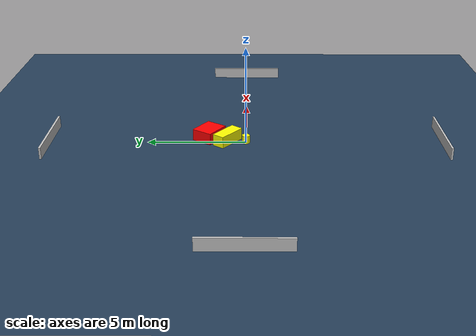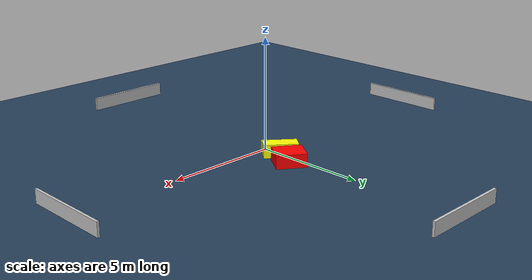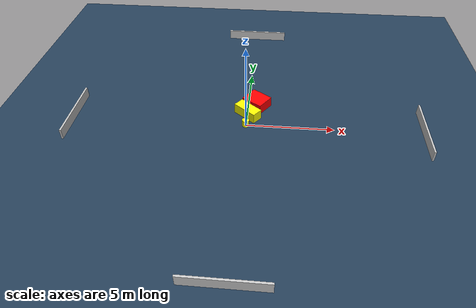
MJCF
<?xml version="1.0" ?>
<mujoco model="generated_environment">
  <option timestep="0.01" integrator="RK4" cone="elliptic"/>
  <default>
    <geom density="1"/>
  </default>
  <asset>
    <texture builtin="gradient" height="3072" name="skybox" rgb1="0.3 0.5 0.7" rgb2="0 0 0" type="skybox" width="512"/>
    <texture builtin="checker" height="300" name="groundplane" rgb1="0.2 0.3 0.4" rgb2="0.1 0.2 0.3" type="2d" width="300"/>
    <material name="groundplane" reflectance="0.2" texrepeat="5 5" texture="groundplane"/>
  </asset>
  <worldbody>
    <light dir="0 0 -1" directional="true" pos="0 0 1.5"/>
    <geom condim="3" friction="0.5 0.005 0.001" material="groundplane" name="floor" pos="0 0 0" size="0 0 0.05" type="plane"/>
    <body name="walls">
      <geom name="wall_1" condim="4" pos="-10.0 0.0 0.3" rgba="0.800000011920929 0.800000011920929 0.800000011920929 1.0" size="0.05 2.0 0.3" type="box"/>
      <geom name="wall_2" condim="4" pos="10.0 0.0 0.3" rgba="0.800000011920929 0.800000011920929 0.800000011920929 1.0" size="0.05 2.0 0.3" type="box"/>
      <geom name="wall_3" condim="4" pos="0.0 -10.0 0.3" rgba="0.800000011920929 0.800000011920929 0.800000011920929 1.0" size="2.0 0.05 0.3" type="box"/>
      <geom name="wall_4" condim="4" pos="0.0 10.0 0.3" rgba="0.800000011920929 0.800000011920929 0.800000011920929 1.0" size="2.0 0.05 0.3" type="box"/>
    </body>
    <body name="robot">
      <joint name="joint_x" type="slide" pos="0 0 0" axis="1 0 0"/>
      <joint name="joint_y" type="slide" pos="0 0 0" axis="0 1 0"/>
      <geom name="robot" type="cylinder" pos="0.0 0.0 0.2" size="0.2 0.2 0.0" mass="5.0" friction="1.0 0.005 0.0001" condim="4" rgba="1.0 1.0 0.0 1.0"/>
    </body>
    <body name="obstacle_1_movable">
      <geom name="obstacle_1_movable" condim="4" pos="0.04835600420463263 0.9424055109831273 0.3" euler="0 0 51.69494805473664" friction="0.0 0.005 0.001" rgba="1.0 1.0 0.0 1.0" size="0.3254108131762835 0.7573651702125057 0.3" type="box" mass="0.1"/>
      <joint type="free"/>
    </body>
    <body name="obstacle_2_static">
      <geom name="obstacle_2_static" condim="4" pos="0.5113888966050423 1.8946233376910488 0.3" euler="0 0 325.4971041220733" friction="0.0 0.005 0.001" rgba="1.0 0.0 0.0 1.0" size="0.6566570393919194 0.5528102953099715 0.3" type="box"/>
    </body>
  </worldbody>
  <actuator>
    <motor name="actuator_x" joint="joint_x" gear="1" ctrlrange="-1 1"/>
    <motor name="actuator_y" joint="joint_y" gear="1" ctrlrange="-1 1"/>
  </actuator>
</mujoco>
